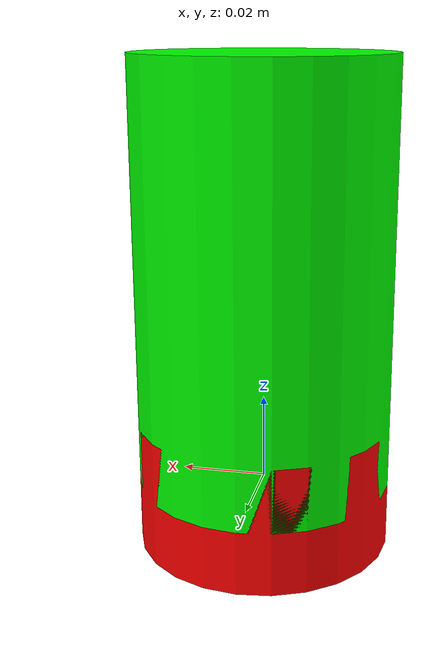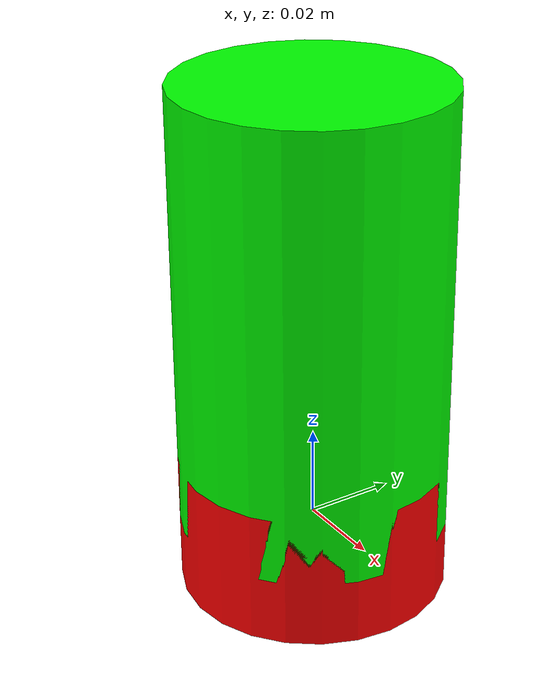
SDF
<sdf version="1.9">
<model name="PanTiltUnit" canonical_link="joint_0_stator">
  <joint name="joint_0_actuator" type="revolute">
    <pose relative_to="joint_0_stator">0.0 0.0 0.03 0.0 0.0 0.0</pose>
    <parent>joint_0_stator</parent>
    <child>joint_0_rotor</child>
    <axis>
      <limit>
        <lower>-3.14</lower>
        <upper>3.14</upper>
        <effort>100.0</effort>
        <velocity>0.2</velocity>
      </limit>
      <xyz>0.0 0.0 1.0</xyz>
    </axis>
    <axis2/>
  </joint>
  <joint name="joint_0_2_link" type="fixed">
    <pose relative_to="joint_0_rotor">0.0 0.0 0.03 0.0 0.0 0.0</pose>
    <parent>joint_0_rotor</parent>
    <child>link_mountingA</child>
    <axis/>
    <axis2/>
  </joint>
  <joint name="link_mountingA_to_rod" type="fixed">
    <pose relative_to="link_mountingA">0.0 0.0 0.015 0.0 0.0 0.0</pose>
    <parent>link_mountingA</parent>
    <child>link_rod</child>
    <axis/>
    <axis2/>
  </joint>
  <joint name="link_rod_to_mountingB" type="fixed">
    <pose relative_to="link_rod">0.015 0.0 0.07 0.0 -1.57 0.0</pose>
    <parent>link_rod</parent>
    <child>link_mountingB</child>
    <axis/>
    <axis2/>
  </joint>
  <joint name="link_2_joint_1" type="fixed">
    <pose relative_to="link_mountingB">0.0 -1.8369701987210296e-18 -0.03 3.141592653589793 0.0 0.0</pose>
    <parent>link_mountingB</parent>
    <child>joint_1_stator</child>
    <axis/>
    <axis2/>
  </joint>
  <joint name="joint_1_actuator" type="revolute">
    <pose relative_to="joint_1_stator">0.0 0.0 0.03 0.0 0.0 0.0</pose>
    <parent>joint_1_stator</parent>
    <child>joint_1_rotor</child>
    <axis>
      <limit>
        <lower>-3.14</lower>
        <upper>3.14</upper>
        <effort>100.0</effort>
        <velocity>0.2</velocity>
      </limit>
      <xyz>0.0 0.0 1.0</xyz>
    </axis>
    <axis2/>
  </joint>
  <link name="joint_0_stator">
    <visual name="joint_0_stator_visual">
      <material>
        <diffuse>1.0 0.0 0.0 1.0</diffuse>
        <specular>0.4 0.0 0.0 0.4980392156862745</specular>
        <emissive>0.0 0.0 0.0 1.0</emissive>
      </material>
      <pose relative_to="joint_0_stator">0.0 0.0 0.0 0.0 0.0 0.0</pose>
      <geometry>
        <cylinder>
          <radius>0.03</radius>
          <length>0.03</length>
        </cylinder>
      </geometry>
    </visual>
  </link>
  <link name="joint_0_rotor">
    <visual name="joint_0_rotor_visual">
      <material>
        <diffuse>0.0 0.0 1.0 1.0</diffuse>
        <specular>0.0 0.0 0.4 0.4980392156862745</specular>
        <emissive>0.0 0.0 0.0 1.0</emissive>
      </material>
      <pose relative_to="joint_0_rotor">0.0 0.0 0.0 0.0 0.0 0.0</pose>
      <geometry>
        <cylinder>
          <radius>0.03</radius>
          <length>0.03</length>
        </cylinder>
      </geometry>
    </visual>
  </link>
  <link name="link_mountingA">
    <visual name="link_mountingA">
      <material>
        <diffuse>0.0 1.0 0.0 1.0</diffuse>
        <specular>0.0 0.0 0.4 0.4980392156862745</specular>
        <emissive>0.0 0.0 0.0 1.0</emissive>
      </material>
      <pose relative_to="link_mountingA">0.0 0.0 0.0 0.0 0.0 0.0</pose>
      <geometry>
        <cylinder>
          <radius>0.03</radius>
          <length>0.03</length>
        </cylinder>
      </geometry>
    </visual>
  </link>
  <link name="link_rod">
    <visual name="link_rod">
      <material>
        <diffuse>0.0 1.0 0.0 1.0</diffuse>
        <specular>0.0 0.0 0.4 0.4980392156862745</specular>
        <emissive>0.0 0.0 0.0 1.0</emissive>
      </material>
      <pose relative_to="link_rod">0.0 0.0 0.05 0.0 0.0 0.0</pose>
      <geometry>
        <cylinder>
          <radius>0.03</radius>
          <length>0.1</length>
        </cylinder>
      </geometry>
    </visual>
  </link>
  <link name="link_mountingB">
    <visual name="link_mountingB">
      <material>
        <diffuse>0.0 1.0 0.0 1.0</diffuse>
        <specular>0.0 0.0 0.4 0.4980392156862745</specular>
        <emissive>0.0 0.0 0.0 1.0</emissive>
      </material>
      <pose relative_to="link_mountingB">0.0 0.0 0.0 0.0 0.0 0.0</pose>
      <geometry>
        <cylinder>
          <radius>0.03</radius>
          <length>0.03</length>
        </cylinder>
      </geometry>
    </visual>
  </link>
  <link name="joint_1_stator">
    <visual name="joint_1_stator_visual">
      <material>
        <diffuse>1.0 0.0 0.0 1.0</diffuse>
        <specular>0.4 0.0 0.0 0.4980392156862745</specular>
        <emissive>0.0 0.0 0.0 1.0</emissive>
      </material>
      <pose relative_to="joint_1_stator">0.0 0.0 0.0 0.0 0.0 0.0</pose>
      <geometry>
        <cylinder>
          <radius>0.03</radius>
          <length>0.03</length>
        </cylinder>
      </geometry>
    </visual>
  </link>
  <link name="joint_1_rotor">
    <visual name="joint_1_rotor_visual">
      <material>
        <diffuse>0.0 0.0 1.0 1.0</diffuse>
        <specular>0.0 0.0 0.4 0.4980392156862745</specular>
        <emissive>0.0 0.0 0.0 1.0</emissive>
      </material>
      <pose relative_to="joint_1_rotor">0.0 0.0 0.0 0.0 0.0 0.0</pose>
      <geometry>
        <cylinder>
          <radius>0.03</radius>
          <length>0.03</length>
        </cylinder>
      </geometry>
    </visual>
  </link>
  <plugin filename="gz-sim-joint-controller-system" name="gz::sim::systems::JointController">
    <joint_name>joint_0_actuator</joint_name>
    <use_force_commands>0</use_force_commands>
    <p_gain>20.0</p_gain>
    <i_gain>0.0</i_gain>
    <d_gain>0.0</d_gain>
  </plugin>
  <plugin filename="gz-sim-joint-controller-system" name="gz::sim::systems::JointController">
    <joint_name>joint_1_actuator</joint_name>
    <use_force_commands>0</use_force_commands>
    <p_gain>20.0</p_gain>
    <i_gain>0.0</i_gain>
    <d_gain>0.0</d_gain>
  </plugin>
</model>
</sdf>
